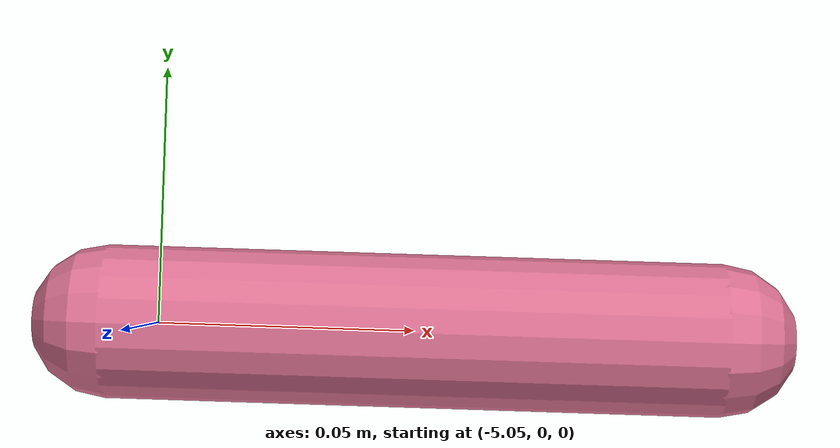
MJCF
<mujoco model="sausage">
    <worldbody>
        <body name="sausage" pos="-5 0 0" euler="0 -90 0">
            <geom name="sausage_geom" type="capsule" size="0.015 0.06" rgba="0.859 0.443 0.573 1" solref="0.002 1" friction="0.2 0.01 0.002" mass="0.1" contype="2" conaffinity="1"/>
            <joint name="sausage_joint" type="free" damping="0.2"/>
        </body>
    </worldbody>

    <actuator>
        <velocity name="sausage_vel" joint="sausage_joint" gear="0 1 0 0 0 0" ctrlrange="-20 20"/>
    </actuator>
</mujoco>
